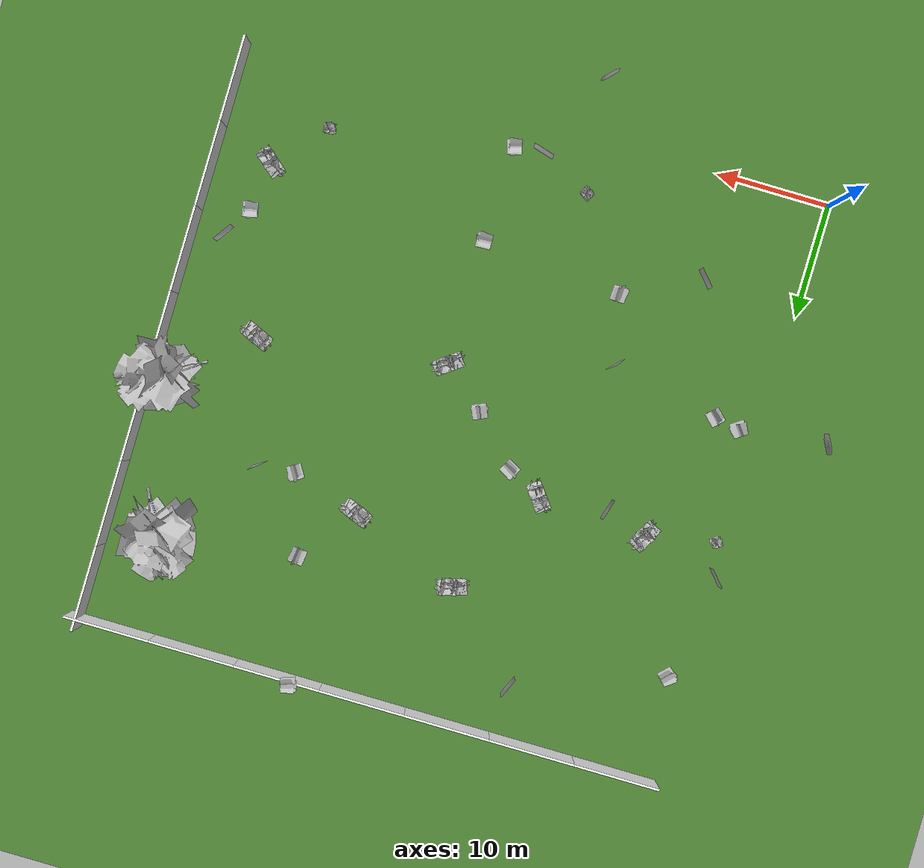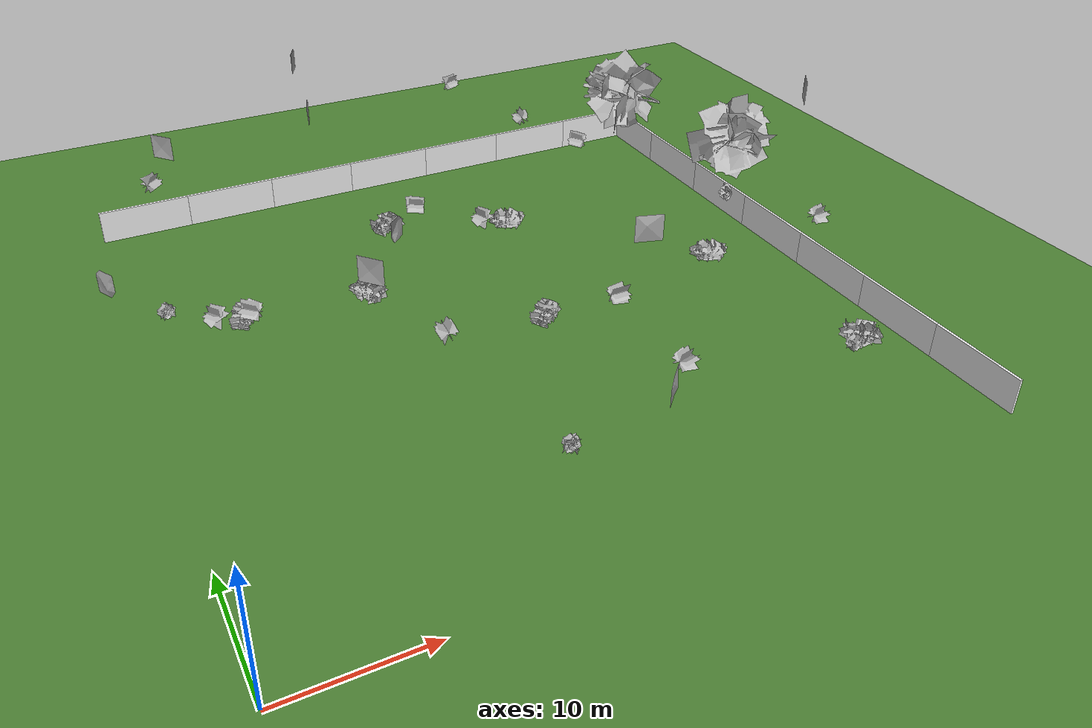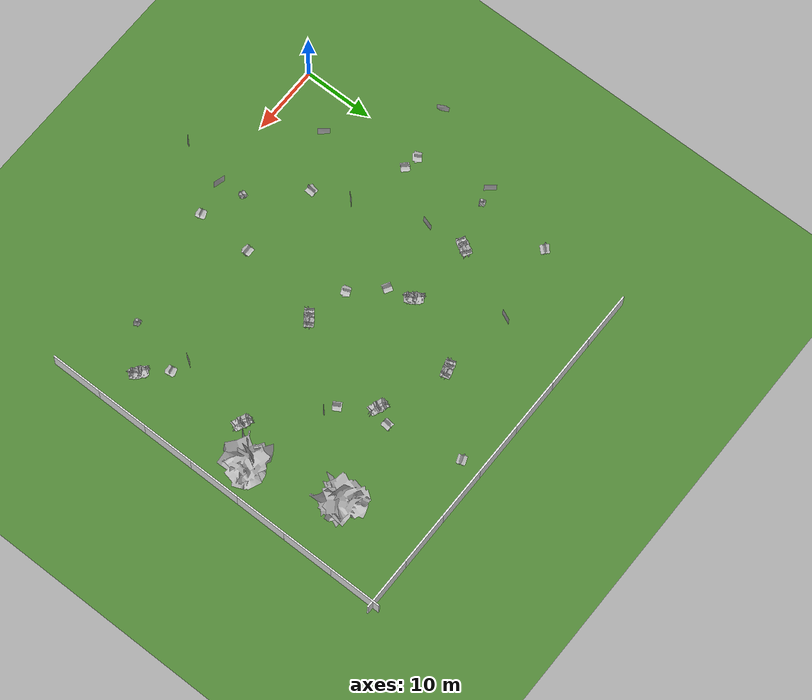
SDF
<sdf version="1.9">
 <world name="plant_forest">
  <model name="ground_plane">
   <static>true</static>
   <link name="link">
    <collision name="collision">
     <geometry><plane><normal>0 0 1</normal><size>110 110</size></plane></geometry>
    </collision>
    <visual name="visual">
     <geometry><plane><normal>0 0 1</normal><size>110 110</size></plane></geometry>
     <material>
      <ambient>0.3 0.5 0.2 1</ambient>
      <diffuse>0.3 0.5 0.2 1</diffuse>
      <specular>0.1 0.1 0.1 1</specular>
     </material>
     <plugin filename="ignition-gazebo-label-system" name="ignition::gazebo::systems::Label">
      <label>1</label>
     </plugin>
    </visual>
   </link>
  </model>
  <include>
   <name>tree_35</name>
   <uri>model://tree_01_2</uri>
   <pose>41.1935 36.3573 0 0 0 5.2255</pose>
   <static>true</static>
  </include>
  <include>
   <name>tree_45</name>
   <uri>model://tree_01_2</uri>
   <pose>38.9203 34.5250 0 0 0 0.4452</pose>
   <static>true</static>
  </include>
  <include>
   <name>bush_0</name>
   <uri>model://bush_02</uri>
   <pose>44.9961 7.6013 0 0 0 3.4067</pose>
   <static>true</static>
  </include>
  <include>
   <name>bush_20</name>
   <uri>model://bush_02</uri>
   <pose>23.1582 4.9613 0 0 0 2.6872</pose>
   <static>true</static>
  </include>
  <include>
   <name>bush_22</name>
   <uri>model://bush_02</uri>
   <pose>4.3767 32.1211 0 0 0 3.6600</pose>
   <static>true</static>
  </include>
  <include>
   <name>bush_27</name>
   <uri>model://bush_02</uri>
   <pose>45.7158 29.8341 0 0 0 5.5381</pose>
   <static>true</static>
  </include>
  <include>
   <name>flowers_1</name>
   <uri>model://flowers_03</uri>
   <pose>11.8229 15.6852 0 0 0 0.7830</pose>
   <static>true</static>
  </include>
  <include>
   <name>flowers_2</name>
   <uri>model://flowers_03</uri>
   <pose>0.6838 16.0217 0 0 0 2.0495</pose>
   <static>true</static>
  </include>
  <include>
   <name>flowers_18</name>
   <uri>model://flowers_03</uri>
   <pose>43.2038 37.5769 0 0 0 3.8494</pose>
   <static>true</static>
  </include>
  <include>
   <name>flowers_21</name>
   <uri>model://flowers_03</uri>
   <pose>25.5181 2.0448 0 0 0 3.9380</pose>
   <static>true</static>
  </include>
  <include>
   <name>grass_2</name>
   <uri>model://grass_01</uri>
   <pose>32.6885 40.2760 0 0 0 6.1621</pose>
   <static>true</static>
  </include>
  <include>
   <name>grass_9</name>
   <uri>model://grass_01</uri>
   <pose>26.9984 14.5684 0 0 0 4.7390</pose>
   <static>true</static>
  </include>
  <include>
   <name>grass_12</name>
   <uri>model://grass_02</uri>
   <pose>19.1486 25.6222 0 0 0 1.0543</pose>
   <static>true</static>
  </include>
  <include>
   <name>grass_13</name>
   <uri>model://grass_03</uri>
   <pose>44.5185 20.9623 0 0 0 4.8870</pose>
   <static>true</static>
  </include>
  <include>
   <name>grass_15</name>
   <uri>model://grass_02</uri>
   <pose>7.2765 39.1705 0 0 0 2.3581</pose>
   <static>true</static>
  </include>
  <include>
   <name>grass_18</name>
   <uri>model://grass_03</uri>
   <pose>29.3307 28.4378 0 0 0 3.5559</pose>
   <static>true</static>
  </include>
  <include>
   <name>grass_25</name>
   <uri>model://grass_02</uri>
   <pose>33.7645 31.7502 0 0 0 0.5445</pose>
   <static>true</static>
  </include>
  <include>
   <name>grass_31</name>
   <uri>model://grass_01</uri>
   <pose>18.2985 14.0067 0 0 0 3.0839</pose>
   <static>true</static>
  </include>
  <include>
   <name>grass_38</name>
   <uri>model://grass_03</uri>
   <pose>8.6003 24.9800 0 0 0 3.7497</pose>
   <static>true</static>
  </include>
  <include>
   <name>grass_41</name>
   <uri>model://grass_01</uri>
   <pose>5.1225 18.9521 0 0 0 0.7934</pose>
   <static>true</static>
  </include>
  <include>
   <name>grass_47</name>
   <uri>model://grass_03</uri>
   <pose>25.3866 10.2065 0 0 0 4.9684</pose>
   <static>true</static>
  </include>
  <include>
   <name>grass_49</name>
   <uri>model://grass_02</uri>
   <pose>34.5760 47.0430 0 0 0 1.9188</pose>
   <static>true</static>
  </include>
  <include>
   <name>clover_15</name>
   <uri>model://clover_05</uri>
   <pose>14.5449 39.9430 0 0 0 1.1403</pose>
   <static>true</static>
  </include>
  <include>
   <name>clover_19</name>
   <uri>model://clover_04</uri>
   <pose>30.1023 4.8093 0 0 0 2.8578</pose>
   <static>true</static>
  </include>
  <include>
   <name>clover_23</name>
   <uri>model://clover_04</uri>
   <pose>12.0392 24.9591 0 0 0 1.2790</pose>
   <static>true</static>
  </include>
  <include>
   <name>clover_28</name>
   <uri>model://clover_04</uri>
   <pose>42.9178 14.1801 0 0 0 0.9674</pose>
   <static>true</static>
  </include>
  <include>
   <name>clover_31</name>
   <uri>model://clover_05</uri>
   <pose>0.7911 36.4153 0 0 0 5.4288</pose>
   <static>true</static>
  </include>
  <include>
   <name>clover_34</name>
   <uri>model://clover_05</uri>
   <pose>7.6726 15.3543 0 0 0 5.4366</pose>
   <static>true</static>
  </include>
  <include>
   <name>hedge_1</name>
   <uri>model://hedge_01</uri>
   <pose>35.4912 35.9223 0 0 0 2.7665</pose>
   <static>true</static>
  </include>
  <include>
   <name>hedge_4</name>
   <uri>model://hedge_01</uri>
   <pose>14.3843 33.7695 0 0 0 5.3554</pose>
   <static>true</static>
  </include>
  <include>
   <name>hedge_5</name>
   <uri>model://hedge_01</uri>
   <pose>43.5974 12.1727 0 0 0 5.5759</pose>
   <static>true</static>
  </include>
  <include>
   <name>hedge_7</name>
   <uri>model://hedge_01</uri>
   <pose>47.7529 23.6896 0 0 0 2.7267</pose>
   <static>true</static>
  </include>
  <include>
   <name>hedge_8</name>
   <uri>model://hedge_01</uri>
   <pose>24.9955 19.5735 0 0 0 0.6315</pose>
   <static>true</static>
  </include>
  <include>
   <name>hedge_9</name>
   <uri>model://hedge_01</uri>
   <pose>18.6241 38.7287 0 0 0 0.2890</pose>
   <static>true</static>
  </include>
  <include>
   <name>hedge_11</name>
   <uri>model://hedge_01</uri>
   <pose>6.3291 28.0819 0 0 0 1.0680</pose>
   <static>true</static>
  </include>
  <include>
   <name>wall_n_7</name>
   <uri>model://cmu_grey_wall</uri>
   <pose>4.25 52.0 0 0 0 0</pose>
   <static>true</static>
  </include>
  <include>
   <name>wall_n_8</name>
   <uri>model://cmu_grey_wall</uri>
   <pose>11.75 52.0 0 0 0 0</pose>
   <static>true</static>
  </include>
  <include>
   <name>wall_n_9</name>
   <uri>model://cmu_grey_wall</uri>
   <pose>19.25 52.0 0 0 0 0</pose>
   <static>true</static>
  </include>
  <include>
   <name>wall_n_10</name>
   <uri>model://cmu_grey_wall</uri>
   <pose>26.75 52.0 0 0 0 0</pose>
   <static>true</static>
  </include>
  <include>
   <name>wall_n_11</name>
   <uri>model://cmu_grey_wall</uri>
   <pose>34.25 52.0 0 0 0 0</pose>
   <static>true</static>
  </include>
  <include>
   <name>wall_n_12</name>
   <uri>model://cmu_grey_wall</uri>
   <pose>41.75 52.0 0 0 0 0</pose>
   <static>true</static>
  </include>
  <include>
   <name>wall_n_13</name>
   <uri>model://cmu_grey_wall</uri>
   <pose>49.25 52.0 0 0 0 0</pose>
   <static>true</static>
  </include>
  <include>
   <name>wall_e_7</name>
   <uri>model://cmu_grey_wall</uri>
   <pose>52.0 4.25 0 0 0 1.5708</pose>
   <static>true</static>
  </include>
  <include>
   <name>wall_e_8</name>
   <uri>model://cmu_grey_wall</uri>
   <pose>52.0 11.75 0 0 0 1.5708</pose>
   <static>true</static>
  </include>
  <include>
   <name>wall_e_9</name>
   <uri>model://cmu_grey_wall</uri>
   <pose>52.0 19.25 0 0 0 1.5708</pose>
   <static>true</static>
  </include>
  <include>
   <name>wall_e_10</name>
   <uri>model://cmu_grey_wall</uri>
   <pose>52.0 26.75 0 0 0 1.5708</pose>
   <static>true</static>
  </include>
  <include>
   <name>wall_e_11</name>
   <uri>model://cmu_grey_wall</uri>
   <pose>52.0 34.25 0 0 0 1.5708</pose>
   <static>true</static>
  </include>
  <include>
   <name>wall_e_12</name>
   <uri>model://cmu_grey_wall</uri>
   <pose>52.0 41.75 0 0 0 1.5708</pose>
   <static>true</static>
  </include>
  <include>
   <name>wall_e_13</name>
   <uri>model://cmu_grey_wall</uri>
   <pose>52.0 49.25 0 0 0 1.5708</pose>
   <static>true</static>
  </include>
 </world>
</sdf>
